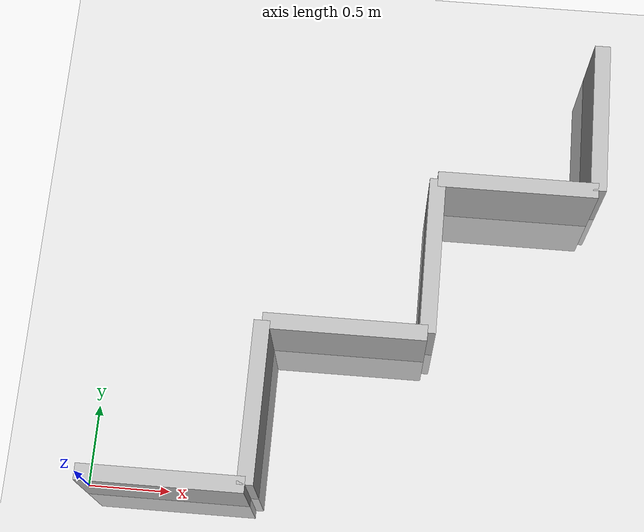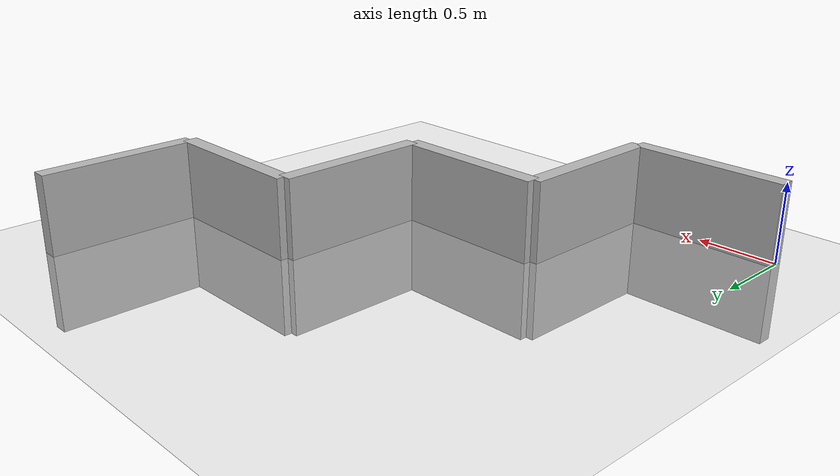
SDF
<?xml version="1.0" ?>
<sdf version="1.6">
  <world name="default">
    <include>
      <uri>model://ground_plane</uri>
    </include>
    <include>
      <uri>model://sun</uri>
    </include>

    <model name="wall_0">
      <static>true</static>
      <link name="link">
        <pose>0.5 0 0 0 0 0</pose>
        <collision name="collision">
          <geometry>
            <box>
              <size>1.0 0.1 1.0</size>
            </box>
          </geometry>
        </collision>
        <visual name="visual">
          <geometry>
            <box>
              <size>1.0 0.1 1.0</size>
            </box>
          </geometry>
        </visual>
      </link>
    </model>

    <model name="wall_1">
      <static>true</static>
      <link name="link">
        <pose>1.0 0.5 0 0 0 1.57</pose>
        <collision name="collision">
          <geometry>
            <box>
              <size>1.0 0.1 1.0</size>
            </box>
          </geometry>
        </collision>
        <visual name="visual">
          <geometry>
            <box>
              <size>1.0 0.1 1.0</size>
            </box>
          </geometry>
        </visual>
      </link>
    </model>

    <model name="wall_2">
      <static>true</static>
      <link name="link">
        <pose>1.5 1.0 0 0 0 0</pose>
        <collision name="collision">
          <geometry>
            <box>
              <size>1.0 0.1 1.0</size>
            </box>
          </geometry>
        </collision>
        <visual name="visual">
          <geometry>
            <box>
              <size>1.0 0.1 1.0</size>
            </box>
          </geometry>
        </visual>
      </link>
    </model>

    <model name="wall_3">
      <static>true</static>
      <link name="link">
        <pose>2.0 1.5 0 0 0 1.57</pose>
        <collision name="collision">
          <geometry>
            <box>
              <size>1.0 0.1 1.0</size>
            </box>
          </geometry>
        </collision>
        <visual name="visual">
          <geometry>
            <box>
              <size>1.0 0.1 1.0</size>
            </box>
          </geometry>
        </visual>
      </link>
    </model>

    <model name="wall_4">
      <static>true</static>
      <link name="link">
        <pose>2.5 2.0 0 0 0 0</pose>
        <collision name="collision">
          <geometry>
            <box>
              <size>1.0 0.1 1.0</size>
            </box>
          </geometry>
        </collision>
        <visual name="visual">
          <geometry>
            <box>
              <size>1.0 0.1 1.0</size>
            </box>
          </geometry>
        </visual>
      </link>
    </model>

    <model name="wall_5">
      <static>true</static>
      <link name="link">
        <pose>3.0 2.5 0 0 0 1.57</pose>
        <collision name="collision">
          <geometry>
            <box>
              <size>1.0 0.1 1.0</size>
            </box>
          </geometry>
        </collision>
        <visual name="visual">
          <geometry>
            <box>
              <size>1.0 0.1 1.0</size>
            </box>
          </geometry>
        </visual>
      </link>
    </model>

  </world>
</sdf>
